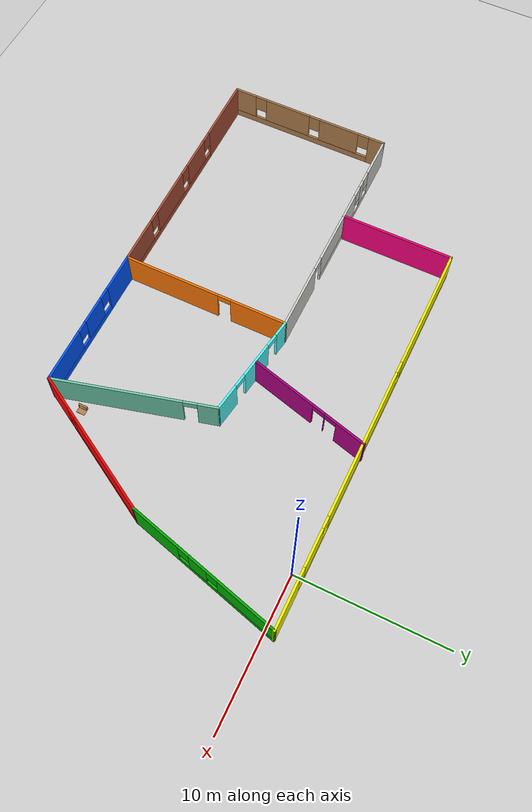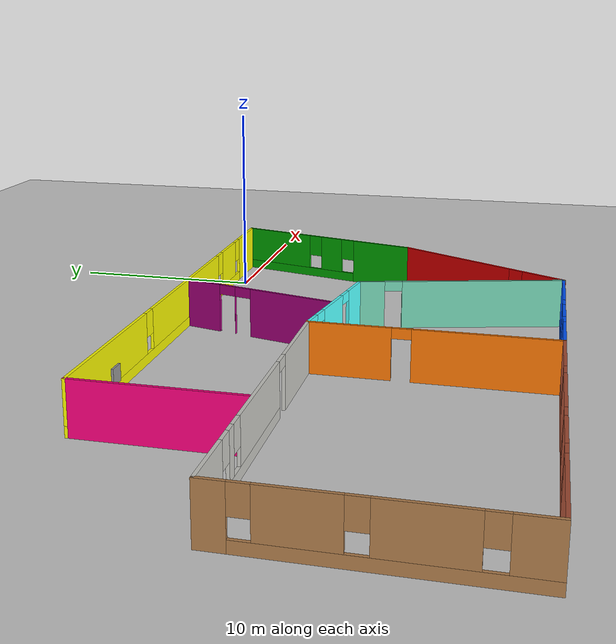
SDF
<sdf version="1.6">
 <world name="default">
  <light name="sun" type="directional">
   <pose>0 0 10 0 -0 0</pose>
   <diffuse>0.8 0.8 0.8 1</diffuse>
   <specular>0.2 0.2 0.2 1</specular>
   <attenuation>
    <range>1000</range>
    <constant>0.9</constant>
    <linear>0.01</linear>
    <quadratic>0.001</quadratic>
   </attenuation>
   <direction>-0.5 0.1 -0.9</direction>
  </light>
  <model name="ground_plane">
   <static>1</static>
   <link name="link">
    <collision name="collision">
     <geometry><plane><normal>0 0 1</normal><size>100 100</size></plane></geometry>
     <surface>
      <contact><collide_bitmask>65535</collide_bitmask></contact>
      <friction><ode><mu>100</mu><mu2>50</mu2></ode></friction>
     </surface>
    </collision>
    <visual name="visual">
     <cast_shadows>0</cast_shadows>
     <geometry><plane><normal>0 0 1</normal><size>100 100</size></plane></geometry>
     <material>
      <script><uri>file://media/materials/scripts/gazebo.material</uri><name>Gazebo/Grey</name></script>
     </material>
    </visual>
   </link>
  </model>
  <gravity>0 0 -9.8</gravity>
  <magnetic_field>6e-06 2.3e-05 -4.2e-05</magnetic_field>
  <atmosphere type="adiabatic"/>
  <physics name="default_physics" default="0" type="ode">
   <max_step_size>0.001</max_step_size>
   <real_time_factor>1</real_time_factor>
   <real_time_update_rate>1000</real_time_update_rate>
  </physics>
  <scene><ambient>0.4 0.4 0.4 1</ambient><background>0.7 0.7 0.7 1</background><shadows>1</shadows></scene>
  <spherical_coordinates>
   <surface_model>EARTH_WGS84</surface_model>
   <latitude_deg>0</latitude_deg>
   <longitude_deg>0</longitude_deg>
   <elevation>0</elevation>
   <heading_deg>0</heading_deg>
  </spherical_coordinates>
  <model name="colourful_world">
   <pose>-12.9775 -8.77969 0 0 -0 0</pose>
   <link name="Wall_0">
    <pose>-16.8802 -3.84701 0 0 0 -1.5708</pose>
    <visual name="Wall_0_Visual_0">
     <pose>-5.17384 0 1.25 0 -0 0</pose>
     <geometry><box><size>1.15232 0.15 2.5</size></box></geometry>
     <material>
      <script><uri>file://media/materials/scripts/gazebo.material</uri><name>Gazebo/Wood</name></script>
      <ambient>1 1 1 1</ambient>
     </material>
     <meta><layer>0</layer></meta>
    </visual>
    <collision name="Wall_0_Collision_0">
     <geometry><box><size>1.15232 0.15 2.5</size></box></geometry>
     <pose>-5.17384 0 1.25 0 -0 0</pose>
    </collision>
    <visual name="Wall_0_Visual_1">
     <pose>0.576161 0 0.25 0 -0 0</pose>
     <geometry><box><size>10.3477 0.15 0.5</size></box></geometry>
     <material>
      <script><uri>file://media/materials/scripts/gazebo.material</uri><name>Gazebo/Wood</name></script>
      <ambient>1 1 1 1</ambient>
     </material>
     <meta><layer>0</layer></meta>
    </visual>
    <collision name="Wall_0_Collision_1">
     <geometry><box><size>10.3477 0.15 0.5</size></box></geometry>
     <pose>0.576161 0 0.25 0 -0 0</pose>
    </collision>
    <visual name="Wall_0_Visual_2">
     <pose>-2.32509 0 1.5 0 -0 0</pose>
     <geometry><box><size>2.94517 0.15 2</size></box></geometry>
     <material>
      <script><uri>file://media/materials/scripts/gazebo.material</uri><name>Gazebo/Wood</name></script>
      <ambient>1 1 1 1</ambient>
     </material>
     <meta><layer>0</layer></meta>
    </visual>
    <collision name="Wall_0_Collision_2">
     <geometry><box><size>2.94517 0.15 2</size></box></geometry>
     <pose>-2.32509 0 1.5 0 -0 0</pose>
    </collision>
    <visual name="Wall_0_Visual_3">
     <pose>1.6341 0 1.5 0 -0 0</pose>
     <geometry><box><size>3.37319 0.15 2</size></box></geometry>
     <material>
      <script><uri>file://media/materials/scripts/gazebo.material</uri><name>Gazebo/Wood</name></script>
      <ambient>1 1 1 1</ambient>
     </material>
     <meta><layer>0</layer></meta>
    </visual>
    <collision name="Wall_0_Collision_3">
     <geometry><box><size>3.37319 0.15 2</size></box></geometry>
     <pose>1.6341 0 1.5 0 -0 0</pose>
    </collision>
    <visual name="Wall_0_Visual_4">
     <pose>4.93535 0 1.5 0 -0 0</pose>
     <geometry><box><size>1.62931 0.15 2</size></box></geometry>
     <material>
      <script><uri>file://media/materials/scripts/gazebo.material</uri><name>Gazebo/Wood</name></script>
      <ambient>1 1 1 1</ambient>
     </material>
     <meta><layer>0</layer></meta>
    </visual>
    <collision name="Wall_0_Collision_4">
     <geometry><box><size>1.62931 0.15 2</size></box></geometry>
     <pose>4.93535 0 1.5 0 -0 0</pose>
    </collision>
    <visual name="Wall_0_Visual_5">
     <pose>-4.19768 0 1.9 0 -0 0</pose>
     <geometry><box><size>0.8 0.15 1.2</size></box></geometry>
     <material>
      <script><uri>file://media/materials/scripts/gazebo.material</uri><name>Gazebo/Wood</name></script>
      <ambient>1 1 1 1</ambient>
     </material>
     <meta><layer>0</layer></meta>
    </visual>
    <collision name="Wall_0_Collision_5">
     <geometry><box><size>0.8 0.15 1.2</size></box></geometry>
     <pose>-4.19768 0 1.9 0 -0 0</pose>
    </collision>
    <visual name="Wall_0_Visual_6">
     <pose>-0.452502 0 1.9 0 -0 0</pose>
     <geometry><box><size>0.8 0.15 1.2</size></box></geometry>
     <material>
      <script><uri>file://media/materials/scripts/gazebo.material</uri><name>Gazebo/Wood</name></script>
      <ambient>1 1 1 1</ambient>
     </material>
     <meta><layer>0</layer></meta>
    </visual>
    <collision name="Wall_0_Collision_6">
     <geometry><box><size>0.8 0.15 1.2</size></box></geometry>
     <pose>-0.452502 0 1.9 0 -0 0</pose>
    </collision>
    <visual name="Wall_0_Visual_7">
     <pose>3.72069 0 1.9 0 -0 0</pose>
     <geometry><box><size>0.8 0.15 1.2</size></box></geometry>
     <material>
      <script><uri>file://media/materials/scripts/gazebo.material</uri><name>Gazebo/Wood</name></script>
      <ambient>1 1 1 1</ambient>
     </material>
     <meta><layer>0</layer></meta>
    </visual>
    <collision name="Wall_0_Collision_7">
     <geometry><box><size>0.8 0.15 1.2</size></box></geometry>
     <pose>3.72069 0 1.9 0 -0 0</pose>
    </collision>
   </link>
   <link name="Wall_1">
    <pose>-8.83017 -9.52201 0 0 -0 0</pose>
    <visual name="Wall_1_Visual_0">
     <pose>-5.82373 0 1.25 0 -0 0</pose>
     <geometry><box><size>4.60255 0.15 2.5</size></box></geometry>
     <material>
      <script><uri>file://media/materials/scripts/gazebo.material</uri><name>Gazebo/Bricks</name></script>
      <ambient>1 1 1 1</ambient>
     </material>
     <meta><layer>0</layer></meta>
    </visual>
    <collision name="Wall_1_Collision_0">
     <geometry><box><size>4.60255 0.15 2.5</size></box></geometry>
     <pose>-5.82373 0 1.25 0 -0 0</pose>
    </collision>
    <visual name="Wall_1_Visual_1">
     <pose>2.30127 0 0.25 0 -0 0</pose>
     <geometry><box><size>11.6475 0.15 0.5</size></box></geometry>
     <material>
      <script><uri>file://media/materials/scripts/gazebo.material</uri><name>Gazebo/Bricks</name></script>
      <ambient>1 1 1 1</ambient>
     </material>
     <meta><layer>0</layer></meta>
    </visual>
    <collision name="Wall_1_Collision_1">
     <geometry><box><size>11.6475 0.15 0.5</size></box></geometry>
     <pose>2.30127 0 0.25 0 -0 0</pose>
    </collision>
    <visual name="Wall_1_Visual_2">
     <pose>-1.51738 0 1.5 0 -0 0</pose>
     <geometry><box><size>2.41015 0.15 2</size></box></geometry>
     <material>
      <script><uri>file://media/materials/scripts/gazebo.material</uri><name>Gazebo/Bricks</name></script>
      <ambient>1 1 1 1</ambient>
     </material>
     <meta><layer>0</layer></meta>
    </visual>
    <collision name="Wall_1_Collision_2">
     <geometry><box><size>2.41015 0.15 2</size></box></geometry>
     <pose>-1.51738 0 1.5 0 -0 0</pose>
    </collision>
    <visual name="Wall_1_Visual_3">
     <pose>2.2813 0 1.5 0 -0 0</pose>
     <geometry><box><size>3.5872 0.15 2</size></box></geometry>
     <material>
      <script><uri>file://media/materials/scripts/gazebo.material</uri><name>Gazebo/Bricks</name></script>
      <ambient>1 1 1 1</ambient>
     </material>
     <meta><layer>0</layer></meta>
    </visual>
    <collision name="Wall_1_Collision_3">
     <geometry><box><size>3.5872 0.15 2</size></box></geometry>
     <pose>2.2813 0 1.5 0 -0 0</pose>
    </collision>
    <visual name="Wall_1_Visual_4">
     <pose>6.49995 0 1.5 0 -0 0</pose>
     <geometry><box><size>3.2501 0.15 2</size></box></geometry>
     <material>
      <script><uri>file://media/materials/scripts/gazebo.material</uri><name>Gazebo/Bricks</name></script>
      <ambient>1 1 1 1</ambient>
     </material>
     <meta><layer>0</layer></meta>
    </visual>
    <collision name="Wall_1_Collision_4">
     <geometry><box><size>3.2501 0.15 2</size></box></geometry>
     <pose>6.49995 0 1.5 0 -0 0</pose>
    </collision>
    <visual name="Wall_1_Visual_5">
     <pose>-3.12245 0 1.9 0 -0 0</pose>
     <geometry><box><size>0.8 0.15 1.2</size></box></geometry>
     <material>
      <script><uri>file://media/materials/scripts/gazebo.material</uri><name>Gazebo/Bricks</name></script>
      <ambient>1 1 1 1</ambient>
     </material>
     <meta><layer>0</layer></meta>
    </visual>
    <collision name="Wall_1_Collision_5">
     <geometry><box><size>0.8 0.15 1.2</size></box></geometry>
     <pose>-3.12245 0 1.9 0 -0 0</pose>
    </collision>
    <visual name="Wall_1_Visual_6">
     <pose>0.087696 0 1.9 0 -0 0</pose>
     <geometry><box><size>0.8 0.15 1.2</size></box></geometry>
     <material>
      <script><uri>file://media/materials/scripts/gazebo.material</uri><name>Gazebo/Bricks</name></script>
      <ambient>1 1 1 1</ambient>
     </material>
     <meta><layer>0</layer></meta>
    </visual>
    <collision name="Wall_1_Collision_6">
     <geometry><box><size>0.8 0.15 1.2</size></box></geometry>
     <pose>0.087696 0 1.9 0 -0 0</pose>
    </collision>
    <visual name="Wall_1_Visual_7">
     <pose>4.4749 0 1.9 0 -0 0</pose>
     <geometry><box><size>0.8 0.15 1.2</size></box></geometry>
     <material>
      <script><uri>file://media/materials/scripts/gazebo.material</uri><name>Gazebo/Bricks</name></script>
      <ambient>1 1 1 1</ambient>
     </material>
     <meta><layer>0</layer></meta>
    </visual>
    <collision name="Wall_1_Collision_7">
     <geometry><box><size>0.8 0.15 1.2</size></box></geometry>
     <pose>4.4749 0 1.9 0 -0 0</pose>
    </collision>
   </link>
   <link name="Wall_11">
    <pose>-8.83017 1.82799 0 0 -0 0</pose>
    <visual name="Wall_11_Visual_0">
     <pose>-6.66275 0 1.25 0 -0 0</pose>
     <geometry><box><size>2.92451 0.15 2.5</size></box></geometry>
     <material>
      <script><uri>file://media/materials/scripts/gazebo.material</uri><name>Gazebo/CeilingTiled</name></script>
      <ambient>1 1 1 1</ambient>
     </material>
     <meta><layer>0</layer></meta>
    </visual>
    <collision name="Wall_11_Collision_0">
     <geometry><box><size>2.92451 0.15 2.5</size></box></geometry>
     <pose>-6.66275 0 1.25 0 -0 0</pose>
    </collision>
    <visual name="Wall_11_Visual_1">
     <pose>5.8182 0 1.25 0 -0 0</pose>
     <geometry><box><size>4.61359 0.15 2.5</size></box></geometry>
     <material>
      <script><uri>file://media/materials/scripts/gazebo.material</uri><name>Gazebo/CeilingTiled</name></script>
      <ambient>1 1 1 1</ambient>
     </material>
     <meta><layer>0</layer></meta>
    </visual>
    <collision name="Wall_11_Collision_1">
     <geometry><box><size>4.61359 0.15 2.5</size></box></geometry>
     <pose>5.8182 0 1.25 0 -0 0</pose>
    </collision>
    <visual name="Wall_11_Visual_2">
     <pose>-1.29454 0 0.25 0 -0 0</pose>
     <geometry><box><size>7.8119 0.15 0.5</size></box></geometry>
     <material>
      <script><uri>file://media/materials/scripts/gazebo.material</uri><name>Gazebo/CeilingTiled</name></script>
      <ambient>1 1 1 1</ambient>
     </material>
     <meta><layer>0</layer></meta>
    </visual>
    <collision name="Wall_11_Collision_2">
     <geometry><box><size>7.8119 0.15 0.5</size></box></geometry>
     <pose>-1.29454 0 0.25 0 -0 0</pose>
    </collision>
    <visual name="Wall_11_Visual_3">
     <pose>-4.1259 0 1.5 0 -0 0</pose>
     <geometry><box><size>0.549194 0.15 2</size></box></geometry>
     <material>
      <script><uri>file://media/materials/scripts/gazebo.material</uri><name>Gazebo/CeilingTiled</name></script>
      <ambient>1 1 1 1</ambient>
     </material>
     <meta><layer>0</layer></meta>
    </visual>
    <collision name="Wall_11_Collision_3">
     <geometry><box><size>0.549194 0.15 2</size></box></geometry>
     <pose>-4.1259 0 1.5 0 -0 0</pose>
    </collision>
    <visual name="Wall_11_Visual_4">
     <pose>-0.219946 0 1.5 0 -0 0</pose>
     <geometry><box><size>5.66271 0.15 2</size></box></geometry>
     <material>
      <script><uri>file://media/materials/scripts/gazebo.material</uri><name>Gazebo/CeilingTiled</name></script>
      <ambient>1 1 1 1</ambient>
     </material>
     <meta><layer>0</layer></meta>
    </visual>
    <collision name="Wall_11_Collision_4">
     <geometry><box><size>5.66271 0.15 2</size></box></geometry>
     <pose>-0.219946 0 1.5 0 -0 0</pose>
    </collision>
    <visual name="Wall_11_Visual_5">
     <pose>-4.80049 0 1.9 0 -0 0</pose>
     <geometry><box><size>0.8 0.15 1.2</size></box></geometry>
     <material>
      <script><uri>file://media/materials/scripts/gazebo.material</uri><name>Gazebo/CeilingTiled</name></script>
      <ambient>1 1 1 1</ambient>
     </material>
     <meta><layer>0</layer></meta>
    </visual>
    <collision name="Wall_11_Collision_5">
     <geometry><box><size>0.8 0.15 1.2</size></box></geometry>
     <pose>-4.80049 0 1.9 0 -0 0</pose>
    </collision>
    <visual name="Wall_11_Visual_6">
     <pose>-3.4513 0 1.9 0 -0 0</pose>
     <geometry><box><size>0.8 0.15 1.2</size></box></geometry>
     <material>
      <script><uri>file://media/materials/scripts/gazebo.material</uri><name>Gazebo/CeilingTiled</name></script>
      <ambient>1 1 1 1</ambient>
     </material>
     <meta><layer>0</layer></meta>
    </visual>
    <collision name="Wall_11_Collision_6">
     <geometry><box><size>0.8 0.15 1.2</size></box></geometry>
     <pose>-3.4513 0 1.9 0 -0 0</pose>
    </collision>
    <visual name="Wall_11_Visual_7">
     <pose>3.06141 0 2.25 0 -0 0</pose>
     <geometry><box><size>0.9 0.15 0.5</size></box></geometry>
     <material>
      <script><uri>file://media/materials/scripts/gazebo.material</uri><name>Gazebo/CeilingTiled</name></script>
      <ambient>1 1 1 1</ambient>
     </material>
     <meta><layer>0</layer></meta>
    </visual>
    <collision name="Wall_11_Collision_7">
     <geometry><box><size>0.9 0.15 0.5</size></box></geometry>
     <pose>3.06141 0 2.25 0 -0 0</pose>
    </collision>
   </link>
   <link name="Wall_12">
    <pose>-0.780168 -3.84701 0 0 0 -1.5708</pose>
    <visual name="Wall_12_Visual_0">
     <pose>-3.79186 0 1.25 0 -0 0</pose>
     <geometry><box><size>3.91628 0.15 2.5</size></box></geometry>
     <material>
      <script><uri>file://media/materials/scripts/gazebo.material</uri><name>Gazebo/Grey</name></script>
      <ambient>0.996078 0.47451 0.0196078 1</ambient>
     </material>
     <meta><layer>0</layer></meta>
    </visual>
    <collision name="Wall_12_Collision_0">
     <geometry><box><size>3.91628 0.15 2.5</size></box></geometry>
     <pose>-3.79186 0 1.25 0 -0 0</pose>
    </collision>
    <visual name="Wall_12_Visual_1">
     <pose>2.40814 0 1.25 0 -0 0</pose>
     <geometry><box><size>6.68372 0.15 2.5</size></box></geometry>
     <material>
      <script><uri>file://media/materials/scripts/gazebo.material</uri><name>Gazebo/Grey</name></script>
      <ambient>0.996078 0.47451 0.0196078 1</ambient>
     </material>
     <meta><layer>0</layer></meta>
    </visual>
    <collision name="Wall_12_Collision_1">
     <geometry><box><size>6.68372 0.15 2.5</size></box></geometry>
     <pose>2.40814 0 1.25 0 -0 0</pose>
    </collision>
    <visual name="Wall_12_Visual_2">
     <pose>-1.38372 0 2.25 0 -0 0</pose>
     <geometry><box><size>0.9 0.15 0.5</size></box></geometry>
     <material>
      <script><uri>file://media/materials/scripts/gazebo.material</uri><name>Gazebo/Grey</name></script>
      <ambient>0.996078 0.47451 0.0196078 1</ambient>
     </material>
     <meta><layer>0</layer></meta>
    </visual>
    <collision name="Wall_12_Collision_2">
     <geometry><box><size>0.9 0.15 0.5</size></box></geometry>
     <pose>-1.38372 0 2.25 0 -0 0</pose>
    </collision>
   </link>
   <link name="Wall_14">
    <pose>4.14483 -9.52201 0 0 -0 0</pose>
    <visual name="Wall_14_Visual_0">
     <pose>-3.60614 0 1.25 0 -0 0</pose>
     <geometry><box><size>2.78771 0.15 2.5</size></box></geometry>
     <material>
      <script><uri>file://media/materials/scripts/gazebo.material</uri><name>Gazebo/Grey</name></script>
      <ambient>0 0.333333 1 1</ambient>
     </material>
     <meta><layer>0</layer></meta>
    </visual>
    <collision name="Wall_14_Collision_0">
     <geometry><box><size>2.78771 0.15 2.5</size></box></geometry>
     <pose>-3.60614 0 1.25 0 -0 0</pose>
    </collision>
    <visual name="Wall_14_Visual_1">
     <pose>1.39386 0 0.25 0 -0 0</pose>
     <geometry><box><size>7.21228 0.15 0.5</size></box></geometry>
     <material>
      <script><uri>file://media/materials/scripts/gazebo.material</uri><name>Gazebo/Grey</name></script>
      <ambient>0 0.333333 1 1</ambient>
     </material>
     <meta><layer>0</layer></meta>
    </visual>
    <collision name="Wall_14_Collision_1">
     <geometry><box><size>7.21228 0.15 0.5</size></box></geometry>
     <pose>1.39386 0 0.25 0 -0 0</pose>
    </collision>
    <visual name="Wall_14_Visual_2">
     <pose>-0.447972 0 1.5 0 -0 0</pose>
     <geometry><box><size>1.92863 0.15 2</size></box></geometry>
     <material>
      <script><uri>file://media/materials/scripts/gazebo.material</uri><name>Gazebo/Grey</name></script>
      <ambient>0 0.333333 1 1</ambient>
     </material>
     <meta><layer>0</layer></meta>
    </visual>
    <collision name="Wall_14_Collision_2">
     <geometry><box><size>1.92863 0.15 2</size></box></geometry>
     <pose>-0.447972 0 1.5 0 -0 0</pose>
    </collision>
    <visual name="Wall_14_Visual_3">
     <pose>3.15817 0 1.5 0 -0 0</pose>
     <geometry><box><size>3.68366 0.15 2</size></box></geometry>
     <material>
      <script><uri>file://media/materials/scripts/gazebo.material</uri><name>Gazebo/Grey</name></script>
      <ambient>0 0.333333 1 1</ambient>
     </material>
     <meta><layer>0</layer></meta>
    </visual>
    <collision name="Wall_14_Collision_3">
     <geometry><box><size>3.68366 0.15 2</size></box></geometry>
     <pose>3.15817 0 1.5 0 -0 0</pose>
    </collision>
    <visual name="Wall_14_Visual_4">
     <pose>-1.81228 0 1.9 0 -0 0</pose>
     <geometry><box><size>0.8 0.15 1.2</size></box></geometry>
     <material>
      <script><uri>file://media/materials/scripts/gazebo.material</uri><name>Gazebo/Grey</name></script>
      <ambient>0 0.333333 1 1</ambient>
     </material>
     <meta><layer>0</layer></meta>
    </visual>
    <collision name="Wall_14_Collision_4">
     <geometry><box><size>0.8 0.15 1.2</size></box></geometry>
     <pose>-1.81228 0 1.9 0 -0 0</pose>
    </collision>
    <visual name="Wall_14_Visual_5">
     <pose>0.916342 0 1.9 0 -0 0</pose>
     <geometry><box><size>0.8 0.15 1.2</size></box></geometry>
     <material>
      <script><uri>file://media/materials/scripts/gazebo.material</uri><name>Gazebo/Grey</name></script>
      <ambient>0 0.333333 1 1</ambient>
     </material>
     <meta><layer>0</layer></meta>
    </visual>
    <collision name="Wall_14_Collision_5">
     <geometry><box><size>0.8 0.15 1.2</size></box></geometry>
     <pose>0.916342 0 1.9 0 -0 0</pose>
    </collision>
   </link>
   <link name="Wall_15">
    <pose>7.69809 -4.40261 0 0 -0 1.8326</pose>
    <visual name="Wall_15_Visual_0">
     <pose>-1.14089 0 1.25 0 -0 0</pose>
     <geometry><box><size>8.46822 0.15 2.5</size></box></geometry>
     <material>
      <script><uri>file://media/materials/scripts/gazebo.material</uri><name>Gazebo/Grey</name></script>
      <ambient>0.435294 0.796078 0.67451 1</ambient>
     </material>
     <meta><layer>0</layer></meta>
    </visual>
    <collision name="Wall_15_Collision_0">
     <geometry><box><size>8.46822 0.15 2.5</size></box></geometry>
     <pose>-1.14089 0 1.25 0 -0 0</pose>
    </collision>
    <visual name="Wall_15_Visual_1">
     <pose>4.68411 0 1.25 0 -0 0</pose>
     <geometry><box><size>1.38178 0.15 2.5</size></box></geometry>
     <material>
      <script><uri>file://media/materials/scripts/gazebo.material</uri><name>Gazebo/Grey</name></script>
      <ambient>0.435294 0.796078 0.67451 1</ambient>
     </material>
     <meta><layer>0</layer></meta>
    </visual>
    <collision name="Wall_15_Collision_1">
     <geometry><box><size>1.38178 0.15 2.5</size></box></geometry>
     <pose>4.68411 0 1.25 0 -0 0</pose>
    </collision>
    <visual name="Wall_15_Visual_2">
     <pose>3.54322 0 2.25 0 -0 0</pose>
     <geometry><box><size>0.9 0.15 0.5</size></box></geometry>
     <material>
      <script><uri>file://media/materials/scripts/gazebo.material</uri><name>Gazebo/Grey</name></script>
      <ambient>0.435294 0.796078 0.67451 1</ambient>
     </material>
     <meta><layer>0</layer></meta>
    </visual>
    <collision name="Wall_15_Collision_2">
     <geometry><box><size>0.9 0.15 0.5</size></box></geometry>
     <pose>3.54322 0 2.25 0 -0 0</pose>
    </collision>
   </link>
   <link name="Wall_16">
    <pose>2.77309 1.27239 0 0 -0 2.98649</pose>
    <visual name="Wall_16_Visual_0">
     <pose>-2.72511 0 1.25 0 -0 0</pose>
     <geometry><box><size>1.89265 0.15 2.5</size></box></geometry>
     <material>
      <script><uri>file://media/materials/scripts/gazebo.material</uri><name>Gazebo/Grey</name></script>
      <ambient>0.333333 1 1 1</ambient>
     </material>
     <meta><layer>0</layer></meta>
    </visual>
    <collision name="Wall_16_Collision_0">
     <geometry><box><size>1.89265 0.15 2.5</size></box></geometry>
     <pose>-2.72511 0 1.25 0 -0 0</pose>
    </collision>
    <visual name="Wall_16_Visual_1">
     <pose>0.384959 0 1.25 0 -0 0</pose>
     <geometry><box><size>2.52748 0.15 2.5</size></box></geometry>
     <material>
      <script><uri>file://media/materials/scripts/gazebo.material</uri><name>Gazebo/Grey</name></script>
      <ambient>0.333333 1 1 1</ambient>
     </material>
     <meta><layer>0</layer></meta>
    </visual>
    <collision name="Wall_16_Collision_1">
     <geometry><box><size>2.52748 0.15 2.5</size></box></geometry>
     <pose>0.384959 0 1.25 0 -0 0</pose>
    </collision>
    <visual name="Wall_16_Visual_2">
     <pose>3.11007 0 1.25 0 -0 0</pose>
     <geometry><box><size>1.12274 0.15 2.5</size></box></geometry>
     <material>
      <script><uri>file://media/materials/scripts/gazebo.material</uri><name>Gazebo/Grey</name></script>
      <ambient>0.333333 1 1 1</ambient>
     </material>
     <meta><layer>0</layer></meta>
    </visual>
    <collision name="Wall_16_Collision_2">
     <geometry><box><size>1.12274 0.15 2.5</size></box></geometry>
     <pose>3.11007 0 1.25 0 -0 0</pose>
    </collision>
    <visual name="Wall_16_Visual_3">
     <pose>-1.32878 0 2.25 0 -0 0</pose>
     <geometry><box><size>0.9 0.15 0.5</size></box></geometry>
     <material>
      <script><uri>file://media/materials/scripts/gazebo.material</uri><name>Gazebo/Grey</name></script>
      <ambient>0.333333 1 1 1</ambient>
     </material>
     <meta><layer>0</layer></meta>
    </visual>
    <collision name="Wall_16_Collision_3">
     <geometry><box><size>0.9 0.15 0.5</size></box></geometry>
     <pose>-1.32878 0 2.25 0 -0 0</pose>
    </collision>
    <visual name="Wall_16_Visual_4">
     <pose>2.0987 0 2.25 0 -0 0</pose>
     <geometry><box><size>0.9 0.15 0.5</size></box></geometry>
     <material>
      <script><uri>file://media/materials/scripts/gazebo.material</uri><name>Gazebo/Grey</name></script>
      <ambient>0.333333 1 1 1</ambient>
     </material>
     <meta><layer>0</layer></meta>
    </visual>
    <collision name="Wall_16_Collision_4">
     <geometry><box><size>0.9 0.15 0.5</size></box></geometry>
     <pose>2.0987 0 2.25 0 -0 0</pose>
    </collision>
   </link>
   <link name="Wall_18">
    <pose>11.5948 -5.14858 0 0 -0 1.0472</pose>
    <visual name="Wall_18_Visual_0">
     <pose>-3.86762 0 1.25 0 -0 0</pose>
     <geometry><box><size>2.51476 0.15 2.5</size></box></geometry>
     <material>
      <script><uri>file://media/materials/scripts/gazebo.material</uri><name>Gazebo/Grey</name></script>
      <ambient>1 0 0 1</ambient>
     </material>
     <meta><layer>0</layer></meta>
    </visual>
    <collision name="Wall_18_Collision_0">
     <geometry><box><size>2.51476 0.15 2.5</size></box></geometry>
     <pose>-3.86762 0 1.25 0 -0 0</pose>
    </collision>
    <visual name="Wall_18_Visual_1">
     <pose>1.25738 0 0.25 0 -0 0</pose>
     <geometry><box><size>7.73524 0.15 0.5</size></box></geometry>
     <material>
      <script><uri>file://media/materials/scripts/gazebo.material</uri><name>Gazebo/Grey</name></script>
      <ambient>1 0 0 1</ambient>
     </material>
     <meta><layer>0</layer></meta>
    </visual>
    <collision name="Wall_18_Collision_1">
     <geometry><box><size>7.73524 0.15 0.5</size></box></geometry>
     <pose>1.25738 0 0.25 0 -0 0</pose>
    </collision>
    <visual name="Wall_18_Visual_2">
     <pose>1.65738 0 1.5 0 -0 0</pose>
     <geometry><box><size>6.93524 0.15 2</size></box></geometry>
     <material>
      <script><uri>file://media/materials/scripts/gazebo.material</uri><name>Gazebo/Grey</name></script>
      <ambient>1 0 0 1</ambient>
     </material>
     <meta><layer>0</layer></meta>
    </visual>
    <collision name="Wall_18_Collision_2">
     <geometry><box><size>6.93524 0.15 2</size></box></geometry>
     <pose>1.65738 0 1.5 0 -0 0</pose>
    </collision>
    <visual name="Wall_18_Visual_3">
     <pose>-2.21024 0 1.9 0 -0 0</pose>
     <geometry><box><size>0.8 0.15 1.2</size></box></geometry>
     <material>
      <script><uri>file://media/materials/scripts/gazebo.material</uri><name>Gazebo/Grey</name></script>
      <ambient>1 0 0 1</ambient>
     </material>
     <meta><layer>0</layer></meta>
    </visual>
    <collision name="Wall_18_Collision_3">
     <geometry><box><size>0.8 0.15 1.2</size></box></geometry>
     <pose>-2.21024 0 1.9 0 -0 0</pose>
    </collision>
   </link>
   <link name="Wall_19">
    <pose>15.4916 4.34425 0 0 -0 1.309</pose>
    <visual name="Wall_19_Visual_0">
     <pose>-3.59573 0 1.25 0 -0 0</pose>
     <geometry><box><size>3.55853 0.15 2.5</size></box></geometry>
     <material>
      <script><uri>file://media/materials/scripts/gazebo.material</uri><name>Gazebo/Grey</name></script>
      <ambient>0 0.666667 0 1</ambient>
     </material>
     <meta><layer>0</layer></meta>
    </visual>
    <collision name="Wall_19_Collision_0">
     <geometry><box><size>3.55853 0.15 2.5</size></box></geometry>
     <pose>-3.59573 0 1.25 0 -0 0</pose>
    </collision>
    <visual name="Wall_19_Visual_1">
     <pose>1.77927 0 0.25 0 -0 0</pose>
     <geometry><box><size>7.19147 0.15 0.5</size></box></geometry>
     <material>
      <script><uri>file://media/materials/scripts/gazebo.material</uri><name>Gazebo/Grey</name></script>
      <ambient>0 0.666667 0 1</ambient>
     </material>
     <meta><layer>0</layer></meta>
    </visual>
    <collision name="Wall_19_Collision_1">
     <geometry><box><size>7.19147 0.15 0.5</size></box></geometry>
     <pose>1.77927 0 0.25 0 -0 0</pose>
    </collision>
    <visual name="Wall_19_Visual_2">
     <pose>-0.335445 0 1.5 0 -0 0</pose>
     <geometry><box><size>1.36205 0.15 2</size></box></geometry>
     <material>
      <script><uri>file://media/materials/scripts/gazebo.material</uri><name>Gazebo/Grey</name></script>
      <ambient>0 0.666667 0 1</ambient>
     </material>
     <meta><layer>0</layer></meta>
    </visual>
    <collision name="Wall_19_Collision_2">
     <geometry><box><size>1.36205 0.15 2</size></box></geometry>
     <pose>-0.335445 0 1.5 0 -0 0</pose>
    </collision>
    <visual name="Wall_19_Visual_3">
     <pose>3.26029 0 1.5 0 -0 0</pose>
     <geometry><box><size>4.22942 0.15 2</size></box></geometry>
     <material>
      <script><uri>file://media/materials/scripts/gazebo.material</uri><name>Gazebo/Grey</name></script>
      <ambient>0 0.666667 0 1</ambient>
     </material>
     <meta><layer>0</layer></meta>
    </visual>
    <collision name="Wall_19_Collision_3">
     <geometry><box><size>4.22942 0.15 2</size></box></geometry>
     <pose>3.26029 0 1.5 0 -0 0</pose>
    </collision>
    <visual name="Wall_19_Visual_4">
     <pose>-1.41647 0 1.9 0 -0 0</pose>
     <geometry><box><size>0.8 0.15 1.2</size></box></geometry>
     <material>
      <script><uri>file://media/materials/scripts/gazebo.material</uri><name>Gazebo/Grey</name></script>
      <ambient>0 0.666667 0 1</ambient>
     </material>
     <meta><layer>0</layer></meta>
    </visual>
    <collision name="Wall_19_Collision_4">
     <geometry><box><size>0.8 0.15 1.2</size></box></geometry>
     <pose>-1.41647 0 1.9 0 -0 0</pose>
    </collision>
    <visual name="Wall_19_Visual_5">
     <pose>0.745579 0 1.9 0 -0 0</pose>
     <geometry><box><size>0.8 0.15 1.2</size></box></geometry>
     <material>
      <script><uri>file://media/materials/scripts/gazebo.material</uri><name>Gazebo/Grey</name></script>
      <ambient>0 0.666667 0 1</ambient>
     </material>
     <meta><layer>0</layer></meta>
    </visual>
    <collision name="Wall_19_Collision_5">
     <geometry><box><size>0.8 0.15 1.2</size></box></geometry>
     <pose>0.745579 0 1.9 0 -0 0</pose>
    </collision>
   </link>
   <link name="Wall_20">
    <pose>3.43831 9.46366 0 0 -0 3.14159</pose>
    <visual name="Wall_20_Visual_0">
     <pose>-11.9144 0 1.25 0 -0 0</pose>
     <geometry><box><size>3.17119 0.15 2.5</size></box></geometry>
     <material>
      <script><uri>file://media/materials/scripts/gazebo.material</uri><name>Gazebo/Grey</name></script>
      <ambient>1 1 0 1</ambient>
     </material>
     <meta><layer>0</layer></meta>
    </visual>
    <collision name="Wall_20_Collision_0">
     <geometry><box><size>3.17119 0.15 2.5</size></box></geometry>
     <pose>-11.9144 0 1.25 0 -0 0</pose>
    </collision>
    <visual name="Wall_20_Visual_1">
     <pose>1.5856 0 0.25 0 -0 0</pose>
     <geometry><box><size>23.8288 0.15 0.5</size></box></geometry>
     <material>
      <script><uri>file://media/materials/scripts/gazebo.material</uri><name>Gazebo/Grey</name></script>
      <ambient>1 1 0 1</ambient>
     </material>
     <meta><layer>0</layer></meta>
    </visual>
    <collision name="Wall_20_Collision_1">
     <geometry><box><size>23.8288 0.15 0.5</size></box></geometry>
     <pose>1.5856 0 0.25 0 -0 0</pose>
    </collision>
    <visual name="Wall_20_Visual_2">
     <pose>-8.27541 0 1.5 0 -0 0</pose>
     <geometry><box><size>2.5068 0.15 2</size></box></geometry>
     <material>
      <script><uri>file://media/materials/scripts/gazebo.material</uri><name>Gazebo/Grey</name></script>
      <ambient>1 1 0 1</ambient>
     </material>
     <meta><layer>0</layer></meta>
    </visual>
    <collision name="Wall_20_Collision_2">
     <geometry><box><size>2.5068 0.15 2</size></box></geometry>
     <pose>-8.27541 0 1.5 0 -0 0</pose>
    </collision>
    <visual name="Wall_20_Visual_3">
     <pose>-1.08539 0 1.5 0 -0 0</pose>
     <geometry><box><size>10.2732 0.15 2</size></box></geometry>
     <material>
      <script><uri>file://media/materials/scripts/gazebo.material</uri><name>Gazebo/Grey</name></script>
      <ambient>1 1 0 1</ambient>
     </material>
     <meta><layer>0</layer></meta>
    </visual>
    <collision name="Wall_20_Collision_3">
     <geometry><box><size>10.2732 0.15 2</size></box></geometry>
     <pose>-1.08539 0 1.5 0 -0 0</pose>
    </collision>
    <visual name="Wall_20_Visual_4">
     <pose>9.17561 0 1.5 0 -0 0</pose>
     <geometry><box><size>8.64878 0.15 2</size></box></geometry>
     <material>
      <script><uri>file://media/materials/scripts/gazebo.material</uri><name>Gazebo/Grey</name></script>
      <ambient>1 1 0 1</ambient>
     </material>
     <meta><layer>0</layer></meta>
    </visual>
    <collision name="Wall_20_Collision_4">
     <geometry><box><size>8.64878 0.15 2</size></box></geometry>
     <pose>9.17561 0 1.5 0 -0 0</pose>
    </collision>
    <visual name="Wall_20_Visual_5">
     <pose>-9.92881 0 1.9 0 -0 0</pose>
     <geometry><box><size>0.8 0.15 1.2</size></box></geometry>
     <material>
      <script><uri>file://media/materials/scripts/gazebo.material</uri><name>Gazebo/Grey</name></script>
      <ambient>1 1 0 1</ambient>
     </material>
     <meta><layer>0</layer></meta>
    </visual>
    <collision name="Wall_20_Collision_5">
     <geometry><box><size>0.8 0.15 1.2</size></box></geometry>
     <pose>-9.92881 0 1.9 0 -0 0</pose>
    </collision>
    <visual name="Wall_20_Visual_6">
     <pose>-6.622 0 1.9 0 -0 0</pose>
     <geometry><box><size>0.8 0.15 1.2</size></box></geometry>
     <material>
      <script><uri>file://media/materials/scripts/gazebo.material</uri><name>Gazebo/Grey</name></script>
      <ambient>1 1 0 1</ambient>
     </material>
     <meta><layer>0</layer></meta>
    </visual>
    <collision name="Wall_20_Collision_6">
     <geometry><box><size>0.8 0.15 1.2</size></box></geometry>
     <pose>-6.622 0 1.9 0 -0 0</pose>
    </collision>
    <visual name="Wall_20_Visual_7">
     <pose>4.45122 0 1.9 0 -0 0</pose>
     <geometry><box><size>0.8 0.15 1.2</size></box></geometry>
     <material>
      <script><uri>file://media/materials/scripts/gazebo.material</uri><name>Gazebo/Grey</name></script>
      <ambient>1 1 0 1</ambient>
     </material>
     <meta><layer>0</layer></meta>
    </visual>
    <collision name="Wall_20_Collision_7">
     <geometry><box><size>0.8 0.15 1.2</size></box></geometry>
     <pose>4.45122 0 1.9 0 -0 0</pose>
    </collision>
   </link>
   <link name="Wall_21">
    <collision name="Wall_21_Collision">
     <geometry><box><size>7.75 0.15 2.5</size></box></geometry>
     <pose>0 0 1.25 0 -0 0</pose>
    </collision>
    <visual name="Wall_21_Visual">
     <pose>0 0 1.25 0 -0 0</pose>
     <geometry><box><size>7.75 0.15 2.5</size></box></geometry>
     <material>
      <script><uri>file://media/materials/scripts/gazebo.material</uri><name>Gazebo/Grey</name></script>
      <ambient>1 0 0.498039 1</ambient>
     </material>
     <meta><layer>0</layer></meta>
    </visual>
    <pose>-9.98669 5.66366 0 0 0 -1.5708</pose>
   </link>
   <link name="Wall_25">
    <pose>3.57778 5.49987 0 0 0 -1.8326</pose>
    <visual name="Wall_25_Visual_0">
     <pose>-3.17251 0 1.25 0 -0 0</pose>
     <geometry><box><size>2.15499 0.15 2.5</size></box></geometry>
     <material>
      <script><uri>file://media/materials/scripts/gazebo.material</uri><name>Gazebo/Grey</name></script>
      <ambient>0.666667 0 0.498039 1</ambient>
     </material>
     <meta><layer>0</layer></meta>
    </visual>
    <collision name="Wall_25_Collision_0">
     <geometry><box><size>2.15499 0.15 2.5</size></box></geometry>
     <pose>-3.17251 0 1.25 0 -0 0</pose>
    </collision>
    <visual name="Wall_25_Visual_1">
     <pose>-1.19177 0 1.25 0 -0 0</pose>
     <geometry><box><size>0.006495 0.15 2.5</size></box></geometry>
     <material>
      <script><uri>file://media/materials/scripts/gazebo.material</uri><name>Gazebo/Grey</name></script>
      <ambient>0.666667 0 0.498039 1</ambient>
     </material>
     <meta><layer>0</layer></meta>
    </visual>
    <collision name="Wall_25_Collision_1">
     <geometry><box><size>0.006495 0.15 2.5</size></box></geometry>
     <pose>-1.19177 0 1.25 0 -0 0</pose>
    </collision>
    <visual name="Wall_25_Visual_2">
     <pose>1.98074 0 1.25 0 -0 0</pose>
     <geometry><box><size>4.53852 0.15 2.5</size></box></geometry>
     <material>
      <script><uri>file://media/materials/scripts/gazebo.material</uri><name>Gazebo/Grey</name></script>
      <ambient>0.666667 0 0.498039 1</ambient>
     </material>
     <meta><layer>0</layer></meta>
    </visual>
    <collision name="Wall_25_Collision_2">
     <geometry><box><size>4.53852 0.15 2.5</size></box></geometry>
     <pose>1.98074 0 1.25 0 -0 0</pose>
    </collision>
    <visual name="Wall_25_Visual_3">
     <pose>-1.64501 0 2.25 0 -0 0</pose>
     <geometry><box><size>0.9 0.15 0.5</size></box></geometry>
     <material>
      <script><uri>file://media/materials/scripts/gazebo.material</uri><name>Gazebo/Grey</name></script>
      <ambient>0.666667 0 0.498039 1</ambient>
     </material>
     <meta><layer>0</layer></meta>
    </visual>
    <collision name="Wall_25_Collision_3">
     <geometry><box><size>0.9 0.15 0.5</size></box></geometry>
     <pose>-1.64501 0 2.25 0 -0 0</pose>
    </collision>
    <visual name="Wall_25_Visual_4">
     <pose>-0.738519 0 2.25 0 -0 0</pose>
     <geometry><box><size>0.9 0.15 0.5</size></box></geometry>
     <material>
      <script><uri>file://media/materials/scripts/gazebo.material</uri><name>Gazebo/Grey</name></script>
      <ambient>0.666667 0 0.498039 1</ambient>
     </material>
     <meta><layer>0</layer></meta>
    </visual>
    <collision name="Wall_25_Collision_4">
     <geometry><box><size>0.9 0.15 0.5</size></box></geometry>
     <pose>-0.738519 0 2.25 0 -0 0</pose>
    </collision>
   </link>
   <link name="Window_0">
    <collision name="Window_0_Collision">
     <geometry><box><size>0.8 0.17 0.8</size></box></geometry>
     <pose>0 0 0.4 0 -0 0</pose>
    </collision>
    <visual name="Window_0_Visual">
     <pose>0 0 0.4 0 -0 0</pose>
     <geometry><box><size>0.8 0.17 0.8</size></box></geometry>
     <material>
      <script><uri>file://media/materials/scripts/gazebo.material</uri><name>Gazebo/Grey</name></script>
     </material>
    </visual>
    <pose>-5.29311 9.3721 0.5 0 -0 0</pose>
   </link>
   <static>1</static>
  </model>
  <model name="wooden_case">
   <link name="base">
    <pose>0 0 0.024 0 -0 0</pose>
    <inertial>
     <pose>-0.022184 0 0.171592 0 -0 0</pose>
     <mass>3.96264</mass>
     <inertia>
      <ixx>0.213536</ixx>
      <ixy>0</ixy>
      <ixz>0.000779377</ixz>
      <iyy>0.0708943</iyy>
      <iyz>0</iyz>
      <izz>0.154604</izz>
     </inertia>
    </inertial>
    <collision name="collision_back">
     <pose>-0.053975 0 0.1778 0 -0 0</pose>
     <geometry><box><size>0.01905 0.5461 0.3175</size></box></geometry>
     <surface>
      <contact>
       <poissons_ratio>0.347</poissons_ratio>
       <elastic_modulus>8.8e+09</elastic_modulus>
       <ode><kp>100000</kp><kd>100</kd><max_vel>100</max_vel><min_depth>0.001</min_depth></ode>
      </contact>
      <friction>
       <torsional>
        <coefficient>1</coefficient>
        <use_patch_radius>0</use_patch_radius>
        <surface_radius>0.01</surface_radius>
       </torsional>
      </friction>
     </surface>
    </collision>
    <visual name="visual_back">
     <pose>-0.053975 0 0.1778 0 -0 0</pose>
     <geometry><box><size>0.01905 0.5461 0.3175</size></box></geometry>
     <material>
      <script><uri>file://media/materials/scripts/gazebo.material</uri><name>Gazebo/Wood</name></script>
     </material>
    </visual>
    <collision name="collision_bottom">
     <pose>0 0 0.009525 0 -0 0</pose>
     <geometry><box><size>0.127 0.5842 0.01905</size></box></geometry>
     <surface>
      <contact>
       <poissons_ratio>0.347</poissons_ratio>
       <elastic_modulus>8.8e+09</elastic_modulus>
       <ode><kp>100000</kp><kd>100</kd><max_vel>100</max_vel><min_depth>0.001</min_depth></ode>
      </contact>
      <friction>
       <torsional>
        <coefficient>1</coefficient>
        <use_patch_radius>0</use_patch_radius>
        <surface_radius>0.01</surface_radius>
       </torsional>
      </friction>
     </surface>
    </collision>
    <visual name="visual_bottom">
     <pose>0 0 0.009525 0 -0 0</pose>
     <geometry><box><size>0.127 0.5842 0.01905</size></box></geometry>
     <material>
      <script><uri>file://media/materials/scripts/gazebo.material</uri><name>Gazebo/Wood</name></script>
     </material>
    </visual>
    <collision name="collision_top">
     <pose>0 0 0.346075 0 -0 0</pose>
     <geometry><box><size>0.127 0.5842 0.01905</size></box></geometry>
     <surface>
      <contact>
       <poissons_ratio>0.347</poissons_ratio>
       <elastic_modulus>8.8e+09</elastic_modulus>
       <ode><kp>100000</kp><kd>100</kd><max_vel>100</max_vel><min_depth>0.001</min_depth></ode>
      </contact>
      <friction>
       <torsional>
        <coefficient>1</coefficient>
        <use_patch_radius>0</use_patch_radius>
        <surface_radius>0.01</surface_radius>
       </torsional>
      </friction>
     </surface>
    </collision>
    <visual name="visual_top">
     <pose>0 0 0.346075 0 -0 0</pose>
     <geometry><box><size>0.127 0.5842 0.01905</size></box></geometry>
     <material>
      <script><uri>file://media/materials/scripts/gazebo.material</uri><name>Gazebo/Wood</name></script>
     </material>
    </visual>
    <collision name="collision_left">
     <pose>0 -0.282575 0.1778 0 -0 0</pose>
     <geometry><box><size>0.127 0.01905 0.3175</size></box></geometry>
     <surface>
      <contact>
       <poissons_ratio>0.347</poissons_ratio>
       <elastic_modulus>8.8e+09</elastic_modulus>
       <ode><kp>100000</kp><kd>100</kd><max_vel>100</max_vel><min_depth>0.001</min_depth></ode>
      </contact>
      <friction>
       <torsional>
        <coefficient>1</coefficient>
        <use_patch_radius>0</use_patch_radius>
        <surface_radius>0.01</surface_radius>
       </torsional>
      </friction>
     </surface>
    </collision>
    <visual name="visual_left">
     <pose>0 -0.282575 0.1778 0 -0 0</pose>
     <geometry><box><size>0.127 0.01905 0.3175</size></box></geometry>
     <material>
      <script><uri>file://media/materials/scripts/gazebo.material</uri><name>Gazebo/Wood</name></script>
     </material>
    </visual>
    <collision name="collision_right">
     <pose>0 0.282575 0.1778 0 -0 0</pose>
     <geometry><box><size>0.127 0.01905 0.3175</size></box></geometry>
     <surface>
      <contact>
       <poissons_ratio>0.347</poissons_ratio>
       <elastic_modulus>8.8e+09</elastic_modulus>
       <ode><kp>100000</kp><kd>100</kd><max_vel>100</max_vel><min_depth>0.001</min_depth></ode>
      </contact>
      <friction>
       <torsional>
        <coefficient>1</coefficient>
        <use_patch_radius>0</use_patch_radius>
        <surface_radius>0.01</surface_radius>
       </torsional>
      </friction>
     </surface>
    </collision>
    <visual name="visual_right">
     <pose>0 0.282575 0.1778 0 -0 0</pose>
     <geometry><box><size>0.127 0.01905 0.3175</size></box></geometry>
     <material>
      <script><uri>file://media/materials/scripts/gazebo.material</uri><name>Gazebo/Wood</name></script>
     </material>
    </visual>
    <collision name="collision_block_left">
     <pose>0.0095 -0.2151 -0.012 0 -0 0</pose>
     <geometry><box><size>0.108 0.05 0.024</size></box></geometry>
     <surface>
      <contact>
       <poissons_ratio>0.347</poissons_ratio>
       <elastic_modulus>8.8e+09</elastic_modulus>
       <ode><kp>100000</kp><kd>100</kd><max_vel>100</max_vel><min_depth>0.001</min_depth></ode>
      </contact>
      <friction>
       <torsional>
        <coefficient>1</coefficient>
        <use_patch_radius>0</use_patch_radius>
        <surface_radius>0.01</surface_radius>
       </torsional>
      </friction>
     </surface>
    </collision>
    <visual name="visual_block_left">
     <pose>0.0095 -0.2151 -0.012 0 -0 0</pose>
     <geometry><box><size>0.108 0.05 0.024</size></box></geometry>
     <material>
      <script><uri>file://media/materials/scripts/gazebo.material</uri><name>Gazebo/Wood</name></script>
     </material>
    </visual>
    <collision name="collision_block_right">
     <pose>0.0095 0.2151 -0.012 0 -0 0</pose>
     <geometry><box><size>0.108 0.05 0.024</size></box></geometry>
     <surface>
      <contact>
       <poissons_ratio>0.347</poissons_ratio>
       <elastic_modulus>8.8e+09</elastic_modulus>
       <ode><kp>100000</kp><kd>100</kd><max_vel>100</max_vel><min_depth>0.001</min_depth></ode>
      </contact>
      <friction>
       <torsional>
        <coefficient>1</coefficient>
        <use_patch_radius>0</use_patch_radius>
        <surface_radius>0.01</surface_radius>
       </torsional>
      </friction>
     </surface>
    </collision>
    <visual name="visual_block_right">
     <pose>0.0095 0.2151 -0.012 0 -0 0</pose>
     <geometry><box><size>0.108 0.05 0.024</size></box></geometry>
     <material>
      <script><uri>file://media/materials/scripts/gazebo.material</uri><name>Gazebo/Wood</name></script>
     </material>
    </visual>
   </link>
   <link name="lid">
    <pose>0.243775 0 0.009525 0 -0 0</pose>
    <inertial>
     <mass>1.97874</mass>
     <inertia>
      <ixx>0.0563367</ixx>
      <ixy>0</ixy>
      <ixz>0</ixz>
      <iyy>0.020911</iyy>
      <iyz>0</iyz>
      <izz>0.0771281</izz>
     </inertia>
    </inertial>
    <collision name="collision">
     <geometry><box><size>0.3556 0.5842 0.01905</size></box></geometry>
     <surface>
      <contact>
       <poissons_ratio>0.347</poissons_ratio>
       <elastic_modulus>8.8e+09</elastic_modulus>
       <ode><kp>100000</kp><kd>100</kd><max_vel>100</max_vel><min_depth>0.001</min_depth></ode>
      </contact>
      <friction>
       <torsional>
        <coefficient>1</coefficient>
        <use_patch_radius>0</use_patch_radius>
        <surface_radius>0.01</surface_radius>
       </torsional>
      </friction>
     </surface>
    </collision>
    <visual name="visual">
     <geometry><box><size>0.3556 0.5842 0.01905</size></box></geometry>
     <material>
      <script><uri>file://media/materials/scripts/gazebo.material</uri><name>Gazebo/Wood</name></script>
     </material>
    </visual>
    <visual name="tee_nut_1">
     <pose>0.122 -0.216 0 0 -0 0</pose>
     <geometry><cylinder><radius>0.00635</radius><length>0.0192405</length></cylinder></geometry>
     <material>
      <script><uri>file://media/materials/scripts/gazebo.material</uri><name>Gazebo/Grey</name></script>
     </material>
    </visual>
    <visual name="tee_nut_2">
     <pose>0.122 -0.088 0 0 -0 0</pose>
     <geometry><cylinder><radius>0.00635</radius><length>0.0192405</length></cylinder></geometry>
     <material>
      <script><uri>file://media/materials/scripts/gazebo.material</uri><name>Gazebo/Grey</name></script>
     </material>
    </visual>
    <visual name="tee_nut_3">
     <pose>0.122 0.088 0 0 -0 0</pose>
     <geometry><cylinder><radius>0.00635</radius><length>0.0192405</length></cylinder></geometry>
     <material>
      <script><uri>file://media/materials/scripts/gazebo.material</uri><name>Gazebo/Grey</name></script>
     </material>
    </visual>
    <visual name="tee_nut_4">
     <pose>0.122 0.216 0 0 -0 0</pose>
     <geometry><cylinder><radius>0.00635</radius><length>0.0192405</length></cylinder></geometry>
     <material>
      <script><uri>file://media/materials/scripts/gazebo.material</uri><name>Gazebo/Grey</name></script>
     </material>
    </visual>
   </link>
   <joint name="lid_hinge" type="revolute">
    <pose>-0.1778 0 0.01905 0 -0 0</pose>
    <parent>base</parent>
    <child>lid</child>
    <axis>
     <xyz>0 1 0</xyz>
     <limit><upper>0.523599</upper><lower>-1.5708</lower></limit>
     <use_parent_model_frame>0</use_parent_model_frame>
     <dynamics><spring_reference>0</spring_reference><spring_stiffness>0</spring_stiffness></dynamics>
    </axis>
   </joint>
   <pose>-3.92448 -16.2647 0.008943 0 -0.000429 -4.4e-05</pose>
  </model>
 </world>
</sdf>
